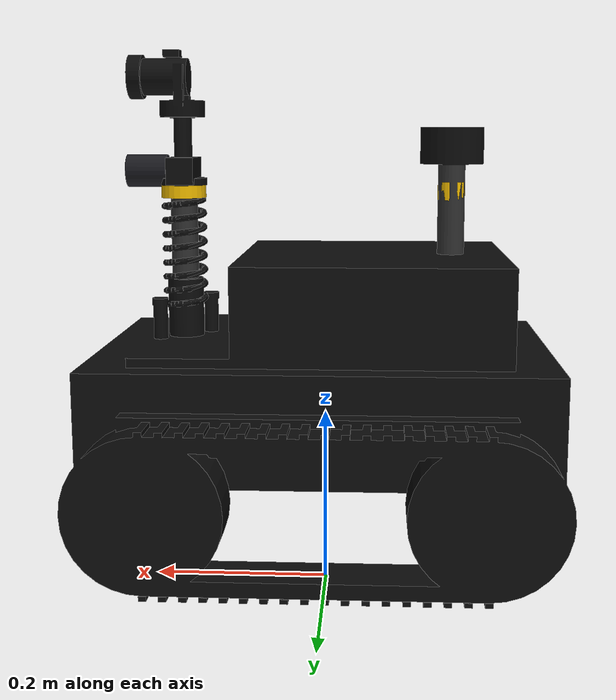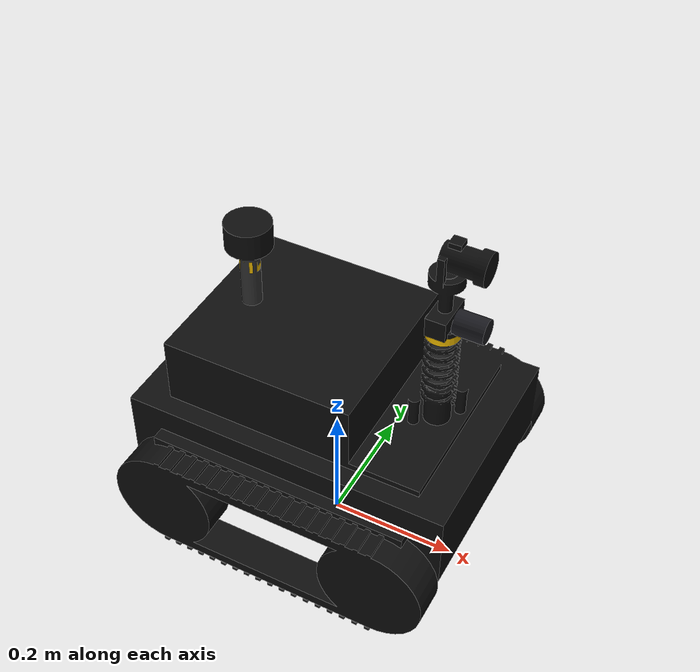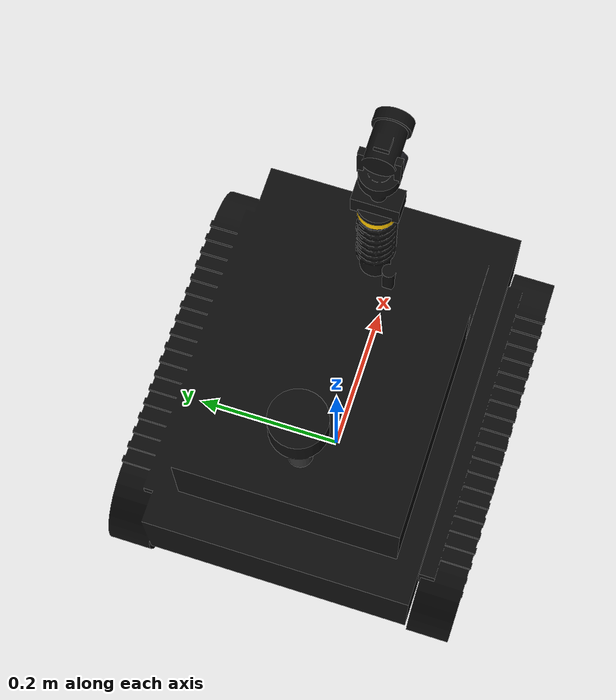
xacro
<?xml version="1.0"?>
<robot name="ugv_belt_drive" xmlns:xacro="http://www.ros.org/wiki/xacro">

  <!-- ============================ PROPERTIES ============================ -->
  <xacro:property name="PI" value="3.14159265359"/>

  <!-- Chassis -->
  <xacro:property name="chassis_length" value="0.50"/>
  <xacro:property name="chassis_width"  value="0.34"/>
  <xacro:property name="chassis_height" value="0.14"/>
  <xacro:property name="chassis_mass"   value="28.0"/>
  <xacro:property name="ground_clearance" value="0.07"/>

  <!-- Track / belt drive -->
  <xacro:property name="sprocket_radius" value="0.065"/>
  <xacro:property name="sprocket_width"  value="0.05"/>
  <xacro:property name="sprocket_mass"   value="1.2"/>
  <xacro:property name="track_separation" value="0.40"/>      <!-- distance between left/right track centers -->
  <xacro:property name="track_wheelbase"  value="0.34"/>      <!-- distance between front and rear sprocket -->
  <xacro:property name="belt_thickness"   value="0.02"/>

  <!-- Mast / sensors -->
  <xacro:property name="mast_height" value="0.22"/>
  <xacro:property name="mast_radius" value="0.015"/>

  <!-- ============================ MATERIALS ============================= -->
  <material name="matte_black">  <color rgba="0.05 0.05 0.05 1.0"/> </material>
  <material name="signal_yellow"><color rgba="1.0 0.78 0.0 1.0"/>  </material>
  <material name="dark_grey">    <color rgba="0.2 0.2 0.2 1.0"/>   </material>
  <material name="lens_glass">   <color rgba="0.1 0.1 0.12 0.9"/>  </material>

  <!-- ============================ INERTIA MACRO =========================== -->
  <xacro:macro name="box_inertia" params="mass x y z">
    <inertial>
      <origin xyz="0 0 -0.06" rpy="0 0 0"/>
      <mass value="${mass}"/>
      <inertia ixx="${mass/12.0*(y*y+z*z) + 0.1}" ixy="0.0" ixz="0.0"
               iyy="${mass/12.0*(x*x+z*z) + 0.1}" iyz="0.0"
               izz="${mass/12.0*(x*x+y*y) + 0.2}"/>
    </inertial>
  </xacro:macro>

  <xacro:macro name="cylinder_inertia" params="mass r h">
    <inertial>
      <mass value="${mass}"/>
      <inertia ixx="${mass/12.0*(3*r*r+h*h)}" ixy="0.0" ixz="0.0"
               iyy="${mass/12.0*(3*r*r+h*h)}" iyz="0.0"
               izz="${mass*r*r/2.0}"/>
    </inertial>
  </xacro:macro>

  <!-- ============================ BASE FOOTPRINT ========================= -->
  <link name="base_footprint"/>

  <joint name="base_footprint_joint" type="fixed">
    <parent link="base_footprint"/>
    <child link="base_link"/>
    <origin xyz="0 0 ${ground_clearance + sprocket_radius}" rpy="0 0 0"/>
  </joint>

  <!-- ============================ CHASSIS ================================ -->
  <link name="base_link">
    <visual>
      <origin xyz="0 0 -0.05" rpy="0 0 0"/>
      <geometry>
        <mesh filename="package://ugv_belt_drive/meshes/sih_bot.stl" scale="1.0 1.0 1.0"/>
      </geometry>
      <material name="matte_black"/>
    </visual>
    <collision>
      <origin xyz="0 0 0.02" rpy="0 0 0"/>
      <geometry><box size="${chassis_length*0.9} ${chassis_width*0.8} ${chassis_height*0.7}"/></geometry>
    </collision>
    <xacro:box_inertia mass="${chassis_mass}" x="${chassis_length}" y="${chassis_width}" z="${chassis_height}"/>
  </link>

  <!-- Yellow chassis trim strip -->
  <link name="trim_strip"/>
  <joint name="trim_strip_joint" type="fixed">
    <parent link="base_link"/>
    <child link="trim_strip"/>
    <origin xyz="0 0 ${chassis_height/2 + 0.006}" rpy="0 0 0"/>
  </joint>

  <!-- ============================ BELT-DRIVE TRACK MACRO ================= -->
  <!-- Each side: front sprocket (driven), rear sprocket (idler), belt shell -->
  <xacro:macro name="track_side" params="side y_sign driven">
    <!-- Front (driven) sprocket -->
    <link name="${side}_front_sprocket">
      <collision>
        <origin xyz="0 0 0" rpy="${PI/2} 0 0"/>
        <geometry><cylinder radius="${sprocket_radius}" length="${sprocket_width}"/></geometry>
      </collision>
      <xacro:cylinder_inertia mass="${sprocket_mass}" r="${sprocket_radius}" h="${sprocket_width}"/>
    </link>

    <joint name="${side}_front_sprocket_joint" type="continuous">
      <parent link="base_link"/>
      <child link="${side}_front_sprocket"/>
      <origin xyz="${track_wheelbase/2} ${y_sign*(track_separation/2)} ${-ground_clearance}" rpy="0 0 0"/>
      <axis xyz="0 1 0"/>
      <limit effort="250.0" velocity="30.0"/>
      <dynamics damping="0.05" friction="0.02"/>
    </joint>

    <!-- Rear (idler) sprocket -->
    <link name="${side}_rear_sprocket">
      <collision>
        <origin xyz="0 0 0" rpy="${PI/2} 0 0"/>
        <geometry><cylinder radius="${sprocket_radius}" length="${sprocket_width}"/></geometry>
      </collision>
      <xacro:cylinder_inertia mass="${sprocket_mass}" r="${sprocket_radius}" h="${sprocket_width}"/>
    </link>

    <joint name="${side}_rear_sprocket_joint" type="continuous">
      <parent link="base_link"/>
      <child link="${side}_rear_sprocket"/>
      <origin xyz="${-track_wheelbase/2} ${y_sign*(track_separation/2)} ${-ground_clearance}" rpy="0 0 0"/>
      <axis xyz="0 1 0"/>
      <limit effort="250.0" velocity="30.0"/>
      <dynamics damping="0.05" friction="0.02"/>
    </joint>

    <!-- Belt shell -->
    <link name="${side}_belt">
      <inertial>
        <mass value="0.2"/>
        <inertia ixx="0.001" ixy="0" ixz="0" iyy="0.001" iyz="0" izz="0.001"/>
      </inertial>
    </link>
    <joint name="${side}_belt_joint" type="fixed">
      <parent link="base_link"/>
      <child link="${side}_belt"/>
      <origin xyz="0 ${y_sign*(track_separation/2)} 0" rpy="0 0 0"/>
    </joint>
  </xacro:macro>

  <xacro:track_side side="left"  y_sign="1"  driven="true"/>
  <xacro:track_side side="right" y_sign="-1" driven="true"/>

  <!-- ============================ ELECTRONICS ENCLOSURES ================= -->
  <link name="electronics_box">
    <collision>
      <geometry><box size="0.16 0.20 0.06"/></geometry>
    </collision>
    <xacro:box_inertia mass="1.2" x="0.16" y="0.20" z="0.06"/>
  </link>
  <joint name="electronics_box_joint" type="fixed">
    <parent link="base_link"/>
    <child link="electronics_box"/>
    <origin xyz="-0.08 0 ${chassis_height/2 + 0.03}" rpy="0 0 0"/>
  </joint>

  <!-- Battery pack -->
  <link name="battery_pack">
    <collision>
      <geometry><box size="0.18 0.10 0.06"/></geometry>
    </collision>
    <xacro:box_inertia mass="1.8" x="0.18" y="0.10" z="0.06"/>
  </link>
  <joint name="battery_pack_joint" type="fixed">
    <parent link="base_link"/>
    <child link="battery_pack"/>
    <origin xyz="0.10 0 ${chassis_height/2 + 0.03}" rpy="0 0 0"/>
  </joint>

  <!-- ============================ IMU ==================================== -->
  <link name="imu_link">
    <visual><geometry><box size="0.03 0.03 0.01"/></geometry><material name="signal_yellow"/></visual>
    <collision><geometry><box size="0.03 0.03 0.01"/></geometry></collision>
    <xacro:box_inertia mass="0.05" x="0.03" y="0.03" z="0.01"/>
  </link>
  <joint name="imu_joint" type="fixed">
    <parent link="base_link"/>
    <child link="imu_link"/>
    <origin xyz="0 0 ${chassis_height/2 + 0.005}" rpy="0 0 0"/>
  </joint>

  <!-- ============================ LIDAR MAST + SENSOR (SLAM) ============= -->
  <link name="lidar_mast">
    <visual>
      <geometry><cylinder radius="${mast_radius}" length="${mast_height + 0.06}"/></geometry>
      <material name="dark_grey"/>
    </visual>
    <collision>
      <geometry><cylinder radius="${mast_radius}" length="${mast_height + 0.06}"/></geometry>
    </collision>
    <xacro:cylinder_inertia mass="0.15" r="${mast_radius}" h="${mast_height + 0.06}"/>
  </link>
  <joint name="lidar_mast_joint" type="fixed">
    <parent link="base_link"/>
    <child link="lidar_mast"/>
    <origin xyz="-0.14 0 ${chassis_height/2 + (mast_height + 0.06)/2}" rpy="0 0 0"/>
  </joint>

  <link name="lidar_link">
    <visual>
      <geometry><cylinder radius="0.035" length="0.04"/></geometry>
      <material name="matte_black"/>
    </visual>
    <collision>
      <geometry><cylinder radius="0.035" length="0.04"/></geometry>
    </collision>
    <xacro:cylinder_inertia mass="0.2" r="0.035" h="0.04"/>
  </link>
  <joint name="lidar_joint" type="fixed">
    <parent link="lidar_mast"/>
    <child link="lidar_link"/>
    <origin xyz="0 0 ${(mast_height + 0.06)/2 + 0.02}" rpy="0 0 0"/>
  </joint>

  <!-- ============================ ROVER-STYLE PAN-TILT CAMERA ============ -->
  <!-- Camera mast: taller, front-mounted, mimics a rover "mastcam" head -->
  <link name="camera_mast">
    <visual>
      <geometry><cylinder radius="${mast_radius}" length="${mast_height*1.1}"/></geometry>
      <material name="dark_grey"/>
    </visual>
    <collision>
      <geometry><cylinder radius="${mast_radius}" length="${mast_height*1.1}"/></geometry>
    </collision>
    <xacro:cylinder_inertia mass="0.15" r="${mast_radius}" h="${mast_height*1.1}"/>
  </link>
  <joint name="camera_mast_joint" type="fixed">
    <parent link="base_link"/>
    <child link="camera_mast"/>
    <origin xyz="0.16 0 ${chassis_height/2 + (mast_height*1.1)/2}" rpy="0 0 0"/>
  </joint>

  <!-- Pan stage: continuous rotation about Z (full 360 deg coverage) -->
  <link name="camera_pan_link">
    <visual>
      <geometry><cylinder radius="0.025" length="0.02"/></geometry>
      <material name="signal_yellow"/>
    </visual>
    <collision><geometry><cylinder radius="0.025" length="0.02"/></geometry></collision>
    <xacro:cylinder_inertia mass="0.08" r="0.025" h="0.02"/>
  </link>
  <joint name="camera_pan_joint" type="revolute">
    <parent link="camera_mast"/>
    <child link="camera_pan_link"/>
    <origin xyz="0 0 ${(mast_height*1.1)/2 + 0.01}" rpy="0 0 0"/>
    <axis xyz="0 0 1"/>
    <limit lower="${-PI}" upper="${PI}" effort="2.0" velocity="2.0"/>
    <dynamics damping="0.1"/>
  </joint>

  <!-- Tilt stage: -60 (down) to +75 (up) deg, rover-style elevation range -->
  <link name="camera_tilt_link">
    <visual>
      <geometry><box size="0.03 0.06 0.03"/></geometry>
      <material name="matte_black"/>
    </visual>
    <collision><geometry><box size="0.03 0.06 0.03"/></geometry></collision>
    <xacro:box_inertia mass="0.1" x="0.03" y="0.06" z="0.03"/>
  </link>
  <joint name="camera_tilt_joint" type="revolute">
    <parent link="camera_pan_link"/>
    <child link="camera_tilt_link"/>
    <origin xyz="0 0 0.02" rpy="0 0 0"/>
    <axis xyz="0 1 0"/>
    <limit lower="${-60*PI/180}" upper="${75*PI/180}" effort="1.5" velocity="1.5"/>
    <dynamics damping="0.1"/>
  </joint>

  <!-- Camera optical body + lens -->
  <link name="camera_link">
    <visual>
      <origin xyz="0.02 0 0" rpy="0 ${PI/2} 0"/>
      <geometry><cylinder radius="0.018" length="0.045"/></geometry>
      <material name="lens_glass"/>
    </visual>
    <collision>
      <origin xyz="0.02 0 0" rpy="0 ${PI/2} 0"/>
      <geometry><cylinder radius="0.018" length="0.045"/></geometry>
    </collision>
    <xacro:cylinder_inertia mass="0.06" r="0.018" h="0.045"/>
  </link>
  <joint name="camera_joint" type="fixed">
    <parent link="camera_tilt_link"/>
    <child link="camera_link"/>
    <origin xyz="0.02 0 0" rpy="0 0 0"/>
  </joint>

  <!-- Optical frame (REP-103: Z forward, X right, Y down) -->
  <link name="camera_optical_frame"/>
  <joint name="camera_optical_joint" type="fixed">
    <parent link="camera_link"/>
    <child link="camera_optical_frame"/>
    <origin xyz="0.03 0 0" rpy="${-PI/2} 0 ${-PI/2}"/>
  </joint>

  <!-- Pan/tilt transmissions -->
  <transmission name="camera_pan_trans">
    <type>transmission_interface/SimpleTransmission</type>
    <joint name="camera_pan_joint">
      <hardwareInterface>hardware_interface/PositionJointInterface</hardwareInterface>
    </joint>
    <actuator name="camera_pan_motor">
      <hardwareInterface>hardware_interface/PositionJointInterface</hardwareInterface>
      <mechanicalReduction>1</mechanicalReduction>
    </actuator>
  </transmission>
  <transmission name="camera_tilt_trans">
    <type>transmission_interface/SimpleTransmission</type>
    <joint name="camera_tilt_joint">
      <hardwareInterface>hardware_interface/PositionJointInterface</hardwareInterface>
    </joint>
    <actuator name="camera_tilt_motor">
      <hardwareInterface>hardware_interface/PositionJointInterface</hardwareInterface>
      <mechanicalReduction>1</mechanicalReduction>
    </actuator>
  </transmission>

  <!-- ============================ GPS ANTENNA (outdoor UGV) ================ -->
  <link name="gps_link">
    <visual><geometry><cylinder radius="0.015" length="0.02"/></geometry><material name="signal_yellow"/></visual>
    <collision><geometry><cylinder radius="0.015" length="0.02"/></geometry></collision>
    <xacro:cylinder_inertia mass="0.03" r="0.015" h="0.02"/>
  </link>
  <joint name="gps_joint" type="fixed">
    <parent link="base_link"/>
    <child link="gps_link"/>
    <origin xyz="-0.14 0 ${chassis_height/2 + mast_height + 0.03}" rpy="0 0 0"/>
  </joint>

  <!-- ============================ GAZEBO HARMONIC SENSORS ================= -->
  <!-- 2D / 3D LiDAR for Mapping and Obstacle Avoidance -->
  <gazebo reference="lidar_link">
    <sensor type="gpu_lidar" name="lidar_sensor">
      <pose>0 0 0 0 0 0</pose>
      <topic>/scan</topic>
      <update_rate>10</update_rate>
      <gz_frame_id>lidar_link</gz_frame_id>
      <lidar>
        <scan>
          <horizontal>
            <samples>360</samples>
            <resolution>1</resolution>
            <min_angle>-3.14159265</min_angle>
            <max_angle>3.14159265</max_angle>
          </horizontal>
        </scan>
        <range>
          <min>0.35</min>
          <max>25.0</max>
          <resolution>0.01</resolution>
        </range>
        <noise>
          <type>gaussian</type>
          <mean>0.0</mean>
          <stddev>0.005</stddev>
        </noise>
      </lidar>
      <visualize>false</visualize>
    </sensor>
  </gazebo>

  <!-- Rover Pan-Tilt Head Camera -->
  <gazebo reference="camera_link">
    <sensor type="camera" name="rover_camera">
      <pose>0 0 0 0 0 0</pose>
      <topic>/camera/image_raw</topic>
      <update_rate>30</update_rate>
      <gz_frame_id>camera_optical_frame</gz_frame_id>
      <camera name="head">
        <horizontal_fov>1.4</horizontal_fov>
        <image>
          <width>1280</width>
          <height>720</height>
          <format>R8G8B8</format>
        </image>
        <clip>
          <near>0.05</near>
          <far>150.0</far>
        </clip>
      </camera>
      <visualize>false</visualize>
    </sensor>
  </gazebo>

  <!-- IMU Sensor -->
  <gazebo reference="imu_link">
    <sensor type="imu" name="imu_sensor">
      <pose>0 0 0 0 0 0</pose>
      <topic>/imu/data</topic>
      <update_rate>100</update_rate>
      <gz_frame_id>imu_link</gz_frame_id>
      <imu>
        <angular_velocity>
          <x><noise type="gaussian"><mean>0.0</mean><stddev>0.001</stddev></noise></x>
          <y><noise type="gaussian"><mean>0.0</mean><stddev>0.001</stddev></noise></y>
          <z><noise type="gaussian"><mean>0.0</mean><stddev>0.001</stddev></noise></z>
        </angular_velocity>
        <linear_acceleration>
          <x><noise type="gaussian"><mean>0.0</mean><stddev>0.01</stddev></noise></x>
          <y><noise type="gaussian"><mean>0.0</mean><stddev>0.01</stddev></noise></y>
          <z><noise type="gaussian"><mean>0.0</mean><stddev>0.01</stddev></noise></z>
        </linear_acceleration>
      </imu>
      <visualize>false</visualize>
    </sensor>
  </gazebo>

  <!-- GPS NavSat Sensor -->
  <gazebo reference="gps_link">
    <sensor type="navsat" name="gps_sensor">
      <pose>0 0 0 0 0 0</pose>
      <topic>/ugv/gps/fix</topic>
      <update_rate>5</update_rate>
      <gz_frame_id>gps_link</gz_frame_id>
    </sensor>
  </gazebo>

  <!-- ============================ GAZEBO HARMONIC MATERIALS & FRICTION == -->
  <gazebo reference="base_link">
    <visual>
      <material>
        <ambient>0.08 0.08 0.08 1.0</ambient>
        <diffuse>0.15 0.15 0.15 1.0</diffuse>
        <specular>0.6 0.6 0.6 1.0</specular>
      </material>
    </visual>
  </gazebo>

  <gazebo reference="trim_strip">
    <visual>
      <material>
        <ambient>1.0 0.78 0.0 1.0</ambient>
        <diffuse>1.0 0.78 0.0 1.0</diffuse>
        <specular>0.8 0.8 0.8 1.0</specular>
      </material>
    </visual>
  </gazebo>

  <gazebo reference="electronics_box">
    <visual>
      <material>
        <ambient>1.0 0.78 0.0 1.0</ambient>
        <diffuse>1.0 0.78 0.0 1.0</diffuse>
        <specular>0.5 0.5 0.5 1.0</specular>
      </material>
    </visual>
  </gazebo>

  <gazebo reference="battery_pack">
    <visual>
      <material>
        <ambient>0.05 0.05 0.05 1.0</ambient>
        <diffuse>0.1 0.1 0.1 1.0</diffuse>
        <specular>0.4 0.4 0.4 1.0</specular>
      </material>
    </visual>
  </gazebo>

  <gazebo reference="lidar_mast">
    <visual>
      <material>
        <ambient>0.25 0.25 0.25 1.0</ambient>
        <diffuse>0.35 0.35 0.35 1.0</diffuse>
        <specular>0.7 0.7 0.7 1.0</specular>
      </material>
    </visual>
  </gazebo>

  <gazebo reference="lidar_link">
    <visual>
      <material>
        <ambient>0.05 0.05 0.05 1.0</ambient>
        <diffuse>0.1 0.1 0.1 1.0</diffuse>
        <specular>0.8 0.8 0.8 1.0</specular>
      </material>
    </visual>
  </gazebo>

  <gazebo reference="camera_link">
    <visual>
      <material>
        <ambient>0.1 0.1 0.1 1.0</ambient>
        <diffuse>0.2 0.2 0.2 1.0</diffuse>
        <specular>0.9 0.9 0.9 1.0</specular>
      </material>
    </visual>
  </gazebo>

  <gazebo reference="left_front_sprocket">
    <mu1>1.5</mu1>
    <mu2>1.5</mu2>
    <kp>1000000.0</kp>
    <kd>100.0</kd>
    <visual>
      <material>
        <ambient>0.2 0.2 0.2 1.0</ambient>
        <diffuse>0.3 0.3 0.3 1.0</diffuse>
      </material>
    </visual>
  </gazebo>
  <gazebo reference="left_rear_sprocket">
    <mu1>1.5</mu1>
    <mu2>1.5</mu2>
    <kp>1000000.0</kp>
    <kd>100.0</kd>
    <visual>
      <material>
        <ambient>0.2 0.2 0.2 1.0</ambient>
        <diffuse>0.3 0.3 0.3 1.0</diffuse>
      </material>
    </visual>
  </gazebo>
  <gazebo reference="right_front_sprocket">
    <mu1>1.5</mu1>
    <mu2>1.5</mu2>
    <kp>1000000.0</kp>
    <kd>100.0</kd>
    <visual>
      <material>
        <ambient>0.2 0.2 0.2 1.0</ambient>
        <diffuse>0.3 0.3 0.3 1.0</diffuse>
      </material>
    </visual>
  </gazebo>
  <gazebo reference="right_rear_sprocket">
    <mu1>1.5</mu1>
    <mu2>1.5</mu2>
    <kp>1000000.0</kp>
    <kd>100.0</kd>
    <visual>
      <material>
        <ambient>0.2 0.2 0.2 1.0</ambient>
        <diffuse>0.3 0.3 0.3 1.0</diffuse>
      </material>
    </visual>
  </gazebo>
  <gazebo reference="left_belt">
    <mu1>1.2</mu1>
    <mu2>1.2</mu2>
    <kp>1000000.0</kp>
    <kd>100.0</kd>
    <visual>
      <material>
        <ambient>0.03 0.03 0.03 1.0</ambient>
        <diffuse>0.08 0.08 0.08 1.0</diffuse>
      </material>
    </visual>
  </gazebo>
  <gazebo reference="right_belt">
    <mu1>1.2</mu1>
    <mu2>1.2</mu2>
    <kp>1000000.0</kp>
    <kd>100.0</kd>
    <visual>
      <material>
        <ambient>0.03 0.03 0.03 1.0</ambient>
        <diffuse>0.08 0.08 0.08 1.0</diffuse>
      </material>
    </visual>
  </gazebo>

  <!-- ============================ GAZEBO HARMONIC SYSTEMS ================= -->
  <!-- 4-Sprocket Unified Synchronous Belt Drive Mobility System -->
  <gazebo>
    <plugin filename="gz-sim-diff-drive-system" name="gz::sim::systems::DiffDrive">
      <left_joint>left_front_sprocket_joint</left_joint>
      <left_joint>left_rear_sprocket_joint</left_joint>
      <right_joint>right_front_sprocket_joint</right_joint>
      <right_joint>right_rear_sprocket_joint</right_joint>
      <wheel_separation>${track_separation}</wheel_separation>
      <wheel_radius>${sprocket_radius}</wheel_radius>
      <max_linear_acceleration>2.5</max_linear_acceleration>
      <max_angular_acceleration>3.0</max_angular_acceleration>
      <max_linear_velocity>1.5</max_linear_velocity>
      <min_linear_velocity>-1.5</min_linear_velocity>
      <max_angular_velocity>2.0</max_angular_velocity>
      <min_angular_velocity>-2.0</min_angular_velocity>
      <topic>/cmd_vel</topic>
      <odom_topic>/odom</odom_topic>
      <frame_id>odom</frame_id>
      <child_frame_id>base_footprint</child_frame_id>
      <odom_publish_frequency>50</odom_publish_frequency>
    </plugin>

    <plugin filename="gz-sim-joint-state-publisher-system" name="gz::sim::systems::JointStatePublisher">
      <topic>/joint_states</topic>
      <update_rate>30</update_rate>
    </plugin>
  </gazebo>

</robot>
